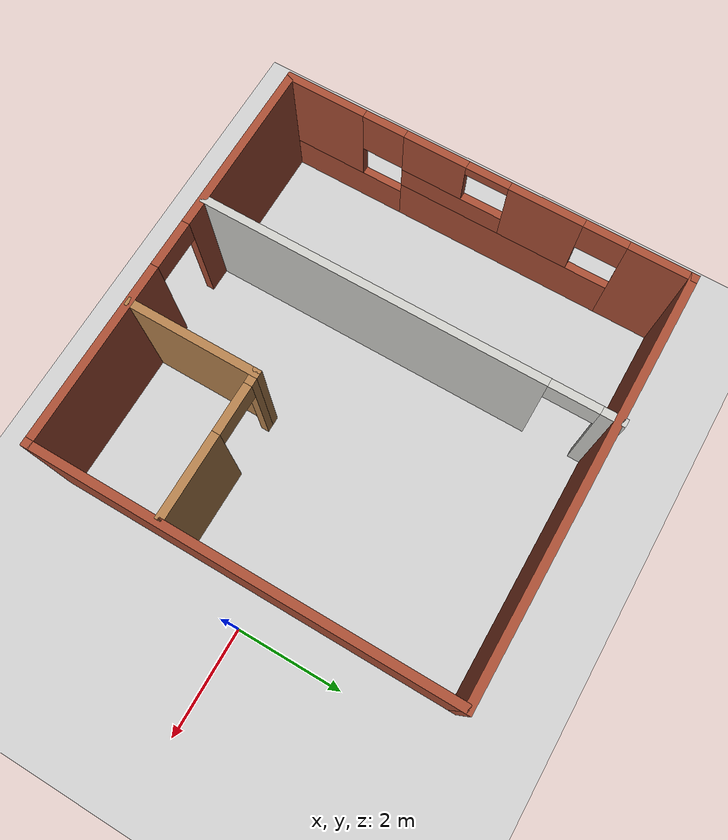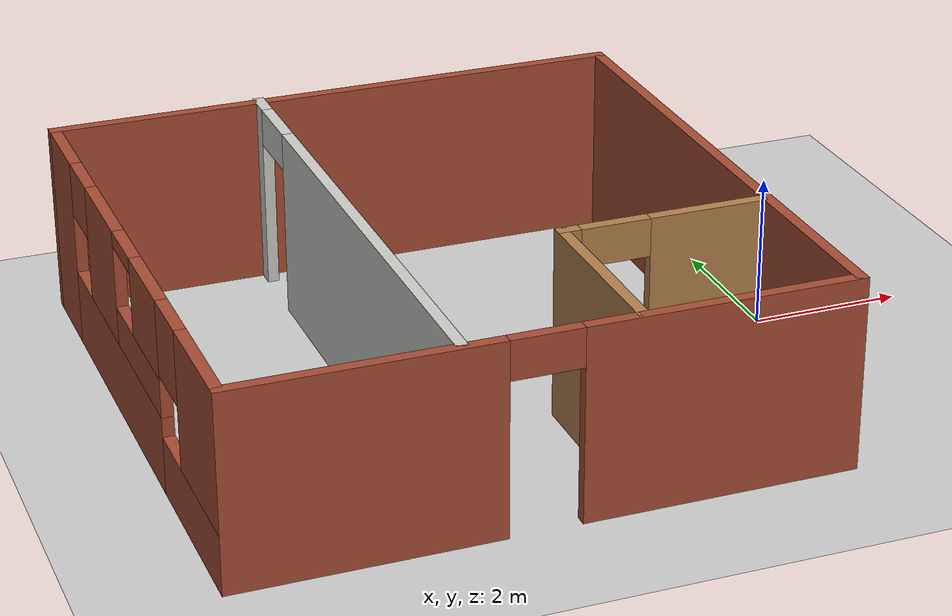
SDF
<sdf version="1.6">
 <world name="default">
  <model name="ground_plane">
   <static>1</static>
   <link name="link">
    <collision name="collision">
     <geometry><plane><normal>0 0 1</normal><size>100 100</size></plane></geometry>
     <surface>
      <contact><collide_bitmask>65535</collide_bitmask></contact>
      <friction><ode><mu>100</mu><mu2>50</mu2></ode></friction>
     </surface>
    </collision>
    <visual name="visual">
     <cast_shadows>0</cast_shadows>
     <geometry><plane><normal>0 0 1</normal><size>100 100</size></plane></geometry>
     <material>
      <script><uri>file://media/materials/scripts/gazebo.material</uri><name>Gazebo/Grey</name></script>
     </material>
    </visual>
   </link>
  </model>
  <model name="Building">
   <pose>-3.58085 -0.038218 0 0 -0 0</pose>
   <link name="Wall_13">
    <pose>-4.73046 -0.023766 0 0 -0 -1.5708</pose>
    <visual name="Wall_13_Visual_0">
     <pose>-3.26262 0 1.25 0 -0 0</pose>
     <geometry><box><size>1.22475 0.15 2.5</size></box></geometry>
     <material>
      <script><uri>file://media/materials/scripts/gazebo.material</uri><name>Gazebo/Bricks</name></script>
      <ambient>1 1 1 1</ambient>
     </material>
     <meta><layer>0</layer></meta>
    </visual>
    <collision name="Wall_13_Collision_0">
     <geometry><box><size>1.22475 0.15 2.5</size></box></geometry>
     <pose>-3.26262 0 1.25 0 -0 0</pose>
    </collision>
    <visual name="Wall_13_Visual_1">
     <pose>-0.568495 0 0.5 0 -0 0</pose>
     <geometry><box><size>4.16351 0.15 1</size></box></geometry>
     <material>
      <script><uri>file://media/materials/scripts/gazebo.material</uri><name>Gazebo/Bricks</name></script>
      <ambient>1 1 1 1</ambient>
     </material>
     <meta><layer>0</layer></meta>
    </visual>
    <collision name="Wall_13_Collision_1">
     <geometry><box><size>4.16351 0.15 1</size></box></geometry>
     <pose>-0.568495 0 0.5 0 -0 0</pose>
    </collision>
    <visual name="Wall_13_Visual_2">
     <pose>2.69413 0 0.375 0 -0 0</pose>
     <geometry><box><size>2.36174 0.15 0.75</size></box></geometry>
     <material>
      <script><uri>file://media/materials/scripts/gazebo.material</uri><name>Gazebo/Bricks</name></script>
      <ambient>1 1 1 1</ambient>
     </material>
     <meta><layer>0</layer></meta>
    </visual>
    <collision name="Wall_13_Collision_2">
     <geometry><box><size>2.36174 0.15 0.75</size></box></geometry>
     <pose>2.69413 0 0.375 0 -0 0</pose>
    </collision>
    <visual name="Wall_13_Visual_3">
     <pose>3.09413 0 1.625 0 -0 0</pose>
     <geometry><box><size>1.56174 0.15 1.75</size></box></geometry>
     <material>
      <script><uri>file://media/materials/scripts/gazebo.material</uri><name>Gazebo/Bricks</name></script>
      <ambient>1 1 1 1</ambient>
     </material>
     <meta><layer>0</layer></meta>
    </visual>
    <collision name="Wall_13_Collision_3">
     <geometry><box><size>1.56174 0.15 1.75</size></box></geometry>
     <pose>3.09413 0 1.625 0 -0 0</pose>
    </collision>
    <visual name="Wall_13_Visual_4">
     <pose>-1.16311 0 1.75 0 -0 0</pose>
     <geometry><box><size>1.37428 0.15 1.5</size></box></geometry>
     <material>
      <script><uri>file://media/materials/scripts/gazebo.material</uri><name>Gazebo/Bricks</name></script>
      <ambient>1 1 1 1</ambient>
     </material>
     <meta><layer>0</layer></meta>
    </visual>
    <collision name="Wall_13_Collision_4">
     <geometry><box><size>1.37428 0.15 1.5</size></box></geometry>
     <pose>-1.16311 0 1.75 0 -0 0</pose>
    </collision>
    <visual name="Wall_13_Visual_5">
     <pose>0.518644 0 1.25 0 -0 0</pose>
     <geometry><box><size>1.98923 0.15 0.5</size></box></geometry>
     <material>
      <script><uri>file://media/materials/scripts/gazebo.material</uri><name>Gazebo/Bricks</name></script>
      <ambient>1 1 1 1</ambient>
     </material>
     <meta><layer>0</layer></meta>
    </visual>
    <collision name="Wall_13_Collision_5">
     <geometry><box><size>1.98923 0.15 0.5</size></box></geometry>
     <pose>0.518644 0 1.25 0 -0 0</pose>
    </collision>
    <visual name="Wall_13_Visual_6">
     <pose>0.918644 0 2 0 -0 0</pose>
     <geometry><box><size>1.18923 0.15 1</size></box></geometry>
     <material>
      <script><uri>file://media/materials/scripts/gazebo.material</uri><name>Gazebo/Bricks</name></script>
      <ambient>1 1 1 1</ambient>
     </material>
     <meta><layer>0</layer></meta>
    </visual>
    <collision name="Wall_13_Collision_6">
     <geometry><box><size>1.18923 0.15 1</size></box></geometry>
     <pose>0.918644 0 2 0 -0 0</pose>
    </collision>
    <visual name="Wall_13_Visual_7">
     <pose>1.91326 0 2.025 0 -0 0</pose>
     <geometry><box><size>0.8 0.15 0.95</size></box></geometry>
     <material>
      <script><uri>file://media/materials/scripts/gazebo.material</uri><name>Gazebo/Bricks</name></script>
      <ambient>1 1 1 1</ambient>
     </material>
     <meta><layer>0</layer></meta>
    </visual>
    <collision name="Wall_13_Collision_7">
     <geometry><box><size>0.8 0.15 0.95</size></box></geometry>
     <pose>1.91326 0 2.025 0 -0 0</pose>
    </collision>
    <visual name="Wall_13_Visual_8">
     <pose>-2.25025 0 2.15 0 -0 0</pose>
     <geometry><box><size>0.8 0.15 0.7</size></box></geometry>
     <material>
      <script><uri>file://media/materials/scripts/gazebo.material</uri><name>Gazebo/Bricks</name></script>
      <ambient>1 1 1 1</ambient>
     </material>
     <meta><layer>0</layer></meta>
    </visual>
    <collision name="Wall_13_Collision_8">
     <geometry><box><size>0.8 0.15 0.7</size></box></geometry>
     <pose>-2.25025 0 2.15 0 -0 0</pose>
    </collision>
    <visual name="Wall_13_Visual_9">
     <pose>-0.075972 0 2.4 0 -0 0</pose>
     <geometry><box><size>0.8 0.15 0.2</size></box></geometry>
     <material>
      <script><uri>file://media/materials/scripts/gazebo.material</uri><name>Gazebo/Bricks</name></script>
      <ambient>1 1 1 1</ambient>
     </material>
     <meta><layer>0</layer></meta>
    </visual>
    <collision name="Wall_13_Collision_9">
     <geometry><box><size>0.8 0.15 0.2</size></box></geometry>
     <pose>-0.075972 0 2.4 0 -0 0</pose>
    </collision>
   </link>
   <link name="Wall_14">
    <pose>-0.930463 -3.82377 0 0 -0 0</pose>
    <visual name="Wall_14_Visual_0">
     <pose>-2.20049 0 1.25 0 -0 0</pose>
     <geometry><box><size>3.34903 0.15 2.5</size></box></geometry>
     <material>
      <script><uri>file://media/materials/scripts/gazebo.material</uri><name>Gazebo/Bricks</name></script>
      <ambient>1 1 1 1</ambient>
     </material>
     <meta><layer>0</layer></meta>
    </visual>
    <collision name="Wall_14_Collision_0">
     <geometry><box><size>3.34903 0.15 2.5</size></box></geometry>
     <pose>-2.20049 0 1.25 0 -0 0</pose>
    </collision>
    <visual name="Wall_14_Visual_1">
     <pose>2.12451 0 1.25 0 -0 0</pose>
     <geometry><box><size>3.50097 0.15 2.5</size></box></geometry>
     <material>
      <script><uri>file://media/materials/scripts/gazebo.material</uri><name>Gazebo/Bricks</name></script>
      <ambient>1 1 1 1</ambient>
     </material>
     <meta><layer>0</layer></meta>
    </visual>
    <collision name="Wall_14_Collision_1">
     <geometry><box><size>3.50097 0.15 2.5</size></box></geometry>
     <pose>2.12451 0 1.25 0 -0 0</pose>
    </collision>
    <visual name="Wall_14_Visual_2">
     <pose>-0.075972 0 2.25 0 -0 0</pose>
     <geometry><box><size>0.9 0.15 0.5</size></box></geometry>
     <material>
      <script><uri>file://media/materials/scripts/gazebo.material</uri><name>Gazebo/Bricks</name></script>
      <ambient>1 1 1 1</ambient>
     </material>
     <meta><layer>0</layer></meta>
    </visual>
    <collision name="Wall_14_Collision_2">
     <geometry><box><size>0.9 0.15 0.5</size></box></geometry>
     <pose>-0.075972 0 2.25 0 -0 0</pose>
    </collision>
   </link>
   <link name="Wall_15">
    <collision name="Wall_15_Collision">
     <geometry><box><size>7.75 0.15 2.5</size></box></geometry>
     <pose>0 0 1.25 0 -0 0</pose>
    </collision>
    <visual name="Wall_15_Visual">
     <pose>0 0 1.25 0 -0 0</pose>
     <geometry><box><size>7.75 0.15 2.5</size></box></geometry>
     <material>
      <script><uri>file://media/materials/scripts/gazebo.material</uri><name>Gazebo/Bricks</name></script>
      <ambient>1 1 1 1</ambient>
     </material>
     <meta><layer>0</layer></meta>
    </visual>
    <pose>2.86954 -0.023766 0 0 -0 1.5708</pose>
   </link>
   <link name="Wall_16">
    <collision name="Wall_16_Collision">
     <geometry><box><size>7.75 0.15 2.5</size></box></geometry>
     <pose>0 0 1.25 0 -0 0</pose>
    </collision>
    <visual name="Wall_16_Visual">
     <pose>0 0 1.25 0 -0 0</pose>
     <geometry><box><size>7.75 0.15 2.5</size></box></geometry>
     <material>
      <script><uri>file://media/materials/scripts/gazebo.material</uri><name>Gazebo/Bricks</name></script>
      <ambient>1 1 1 1</ambient>
     </material>
     <meta><layer>0</layer></meta>
    </visual>
    <pose>-0.930463 3.77623 0 0 -0 3.14159</pose>
   </link>
   <link name="Wall_18">
    <pose>-1.97754 0.023766 0 0 -0 1.5708</pose>
    <visual name="Wall_18_Visual_0">
     <pose>-0.662301 0 1.25 0 -0 0</pose>
     <geometry><box><size>6.4254 0.15 2.5</size></box></geometry>
     <material>
      <script><uri>file://media/materials/scripts/gazebo.material</uri><name>Gazebo/CeilingTiled</name></script>
      <ambient>0.996078 0.47451 0.0196078 1</ambient>
     </material>
     <meta><layer>0</layer></meta>
    </visual>
    <collision name="Wall_18_Collision_0">
     <geometry><box><size>6.4254 0.15 2.5</size></box></geometry>
     <pose>-0.662301 0 1.25 0 -0 0</pose>
    </collision>
    <visual name="Wall_18_Visual_1">
     <pose>3.6627 0 1.25 0 -0 0</pose>
     <geometry><box><size>0.424601 0.15 2.5</size></box></geometry>
     <material>
      <script><uri>file://media/materials/scripts/gazebo.material</uri><name>Gazebo/CeilingTiled</name></script>
      <ambient>0.996078 0.47451 0.0196078 1</ambient>
     </material>
     <meta><layer>0</layer></meta>
    </visual>
    <collision name="Wall_18_Collision_1">
     <geometry><box><size>0.424601 0.15 2.5</size></box></geometry>
     <pose>3.6627 0 1.25 0 -0 0</pose>
    </collision>
    <visual name="Wall_18_Visual_2">
     <pose>3.0004 0 2.25 0 -0 0</pose>
     <geometry><box><size>0.9 0.15 0.5</size></box></geometry>
     <material>
      <script><uri>file://media/materials/scripts/gazebo.material</uri><name>Gazebo/CeilingTiled</name></script>
      <ambient>0.996078 0.47451 0.0196078 1</ambient>
     </material>
     <meta><layer>0</layer></meta>
    </visual>
    <collision name="Wall_18_Collision_2">
     <geometry><box><size>0.9 0.15 0.5</size></box></geometry>
     <pose>3.0004 0 2.25 0 -0 0</pose>
    </collision>
   </link>
   <link name="Wall_20">
    <collision name="Wall_20_Collision">
     <geometry><box><size>2.5 0.15 2.5</size></box></geometry>
     <pose>0 0 1.25 0 -0 0</pose>
    </collision>
    <visual name="Wall_20_Visual">
     <pose>0 0 1.25 0 -0 0</pose>
     <geometry><box><size>2.5 0.15 2.5</size></box></geometry>
     <material>
      <script><uri>file://media/materials/scripts/gazebo.material</uri><name>Gazebo/Wood</name></script>
      <ambient>1 1 1 1</ambient>
     </material>
     <meta><layer>0</layer></meta>
    </visual>
    <pose>0.173226 -2.61247 0 0 -0 1.5708</pose>
   </link>
   <link name="Wall_21">
    <pose>1.47323 -1.43748 0 0 -0 0</pose>
    <visual name="Wall_21_Visual_0">
     <pose>-1.22711 0 1.25 0 -0 0</pose>
     <geometry><box><size>0.295788 0.15 2.5</size></box></geometry>
     <material>
      <script><uri>file://media/materials/scripts/gazebo.material</uri><name>Gazebo/Wood</name></script>
      <ambient>1 1 1 1</ambient>
     </material>
     <meta><layer>0</layer></meta>
    </visual>
    <collision name="Wall_21_Collision_0">
     <geometry><box><size>0.295788 0.15 2.5</size></box></geometry>
     <pose>-1.22711 0 1.25 0 -0 0</pose>
    </collision>
    <visual name="Wall_21_Visual_1">
     <pose>0.597894 0 1.25 0 -0 0</pose>
     <geometry><box><size>1.55421 0.15 2.5</size></box></geometry>
     <material>
      <script><uri>file://media/materials/scripts/gazebo.material</uri><name>Gazebo/Wood</name></script>
      <ambient>1 1 1 1</ambient>
     </material>
     <meta><layer>0</layer></meta>
    </visual>
    <collision name="Wall_21_Collision_1">
     <geometry><box><size>1.55421 0.15 2.5</size></box></geometry>
     <pose>0.597894 0 1.25 0 -0 0</pose>
    </collision>
    <visual name="Wall_21_Visual_2">
     <pose>-0.629212 0 2.25 0 -0 0</pose>
     <geometry><box><size>0.9 0.15 0.5</size></box></geometry>
     <material>
      <script><uri>file://media/materials/scripts/gazebo.material</uri><name>Gazebo/Wood</name></script>
      <ambient>1 1 1 1</ambient>
     </material>
     <meta><layer>0</layer></meta>
    </visual>
    <collision name="Wall_21_Collision_2">
     <geometry><box><size>0.9 0.15 0.5</size></box></geometry>
     <pose>-0.629212 0 2.25 0 -0 0</pose>
    </collision>
   </link>
   <static>1</static>
  </model>
 </world>
</sdf>
